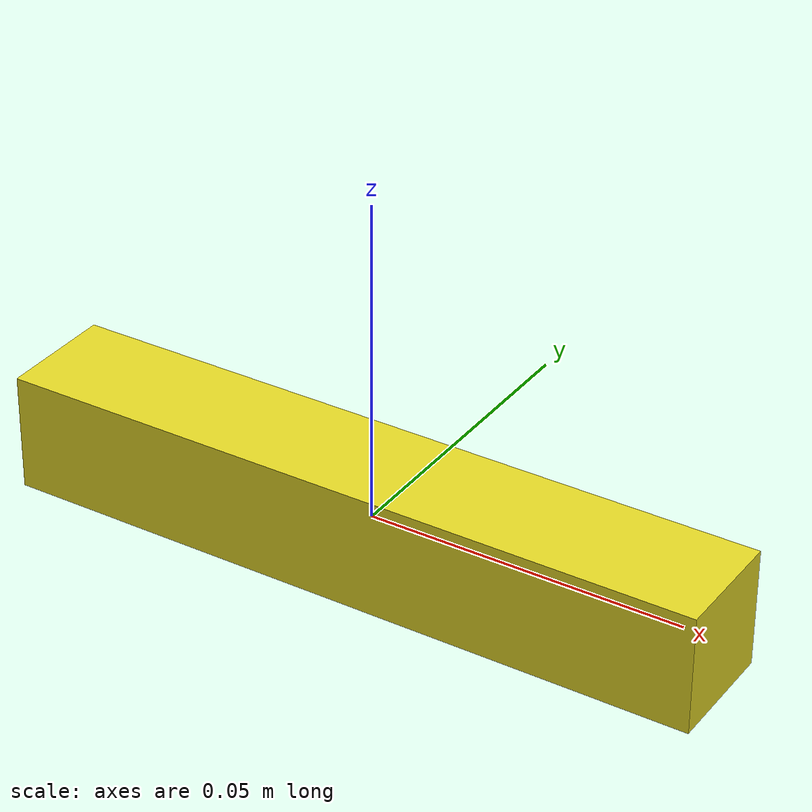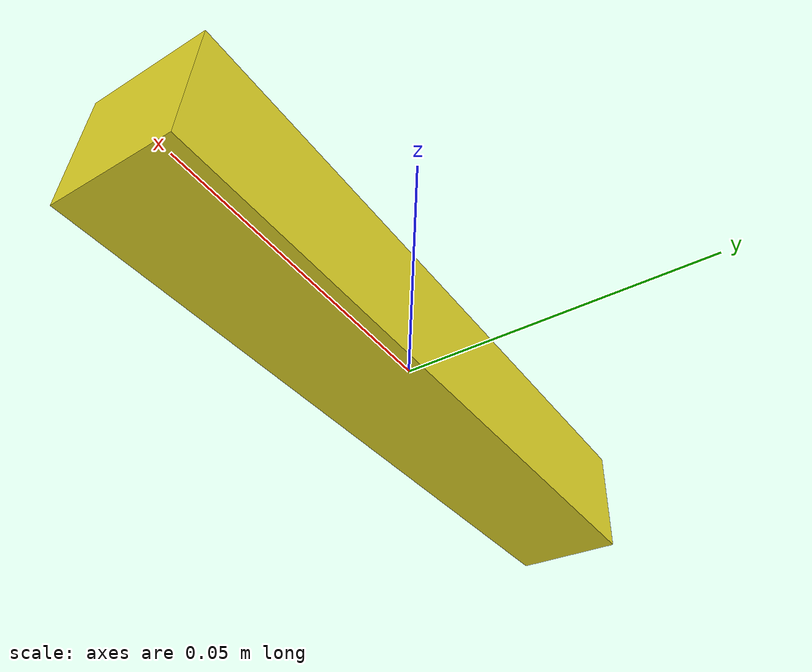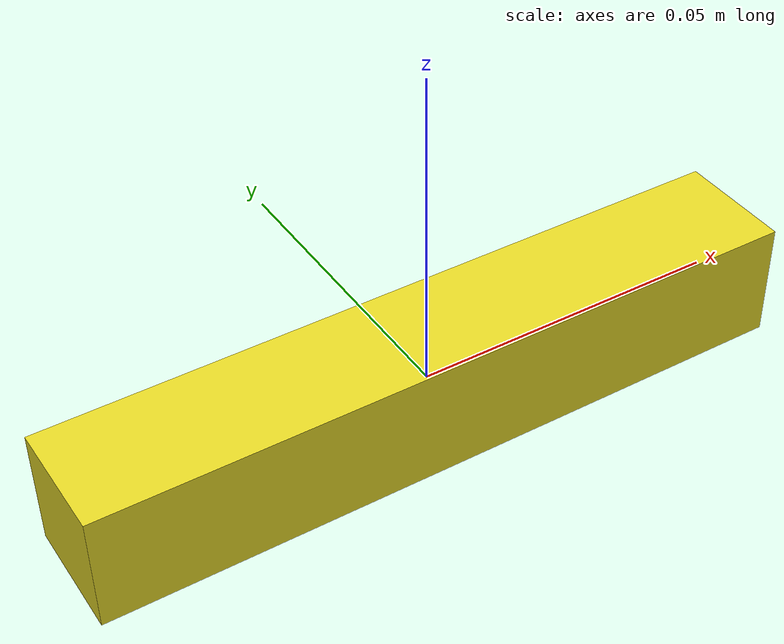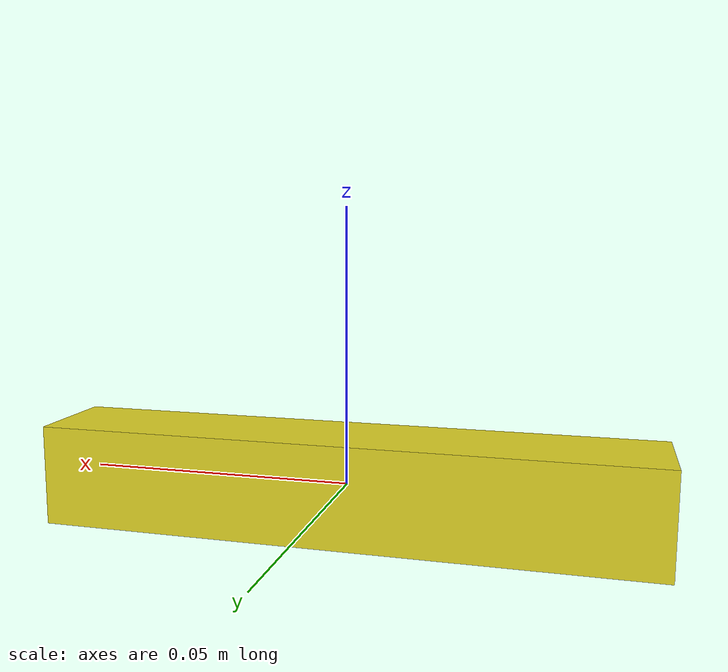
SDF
<?xml version='1.0'?>
<sdf version='1.6'>
  <model name='bar_small'>
    <link name='link'>
      <inertial>
        <mass>0.0422</mass>
        <inertia>
          <ixx>0.000002</ixx> <ixy>0</ixy> <ixz>0</ixz>
          <iyy>0.000047</iyy>  <iyz>0</iyz>
          <izz>0.000047</izz>
        </inertia>
      </inertial>

      <visual name='visual'>
        <geometry>
          <box><size>0.112500 0.018750 0.018750</size></box>
        </geometry>
        <material><script><name>Gazebo/Yellow</name></script></material>
      </visual>

      <collision name='collision'>
        <geometry>
          <box><size>0.112500 0.018750 0.018750</size></box>
        </geometry>
        <surface>
          <friction>
            <ode>
              <mu>100.0</mu> <mu2>100.0</mu2>
            </ode>
          </friction>
          <contact>
            <ode>
              <kp>100000.0</kp> <kd>1.0</kd>
              <min_depth>0.001</min_depth>
            </ode>
          </contact>
        </surface>
      </collision>
    </link>
  </model>
</sdf>
